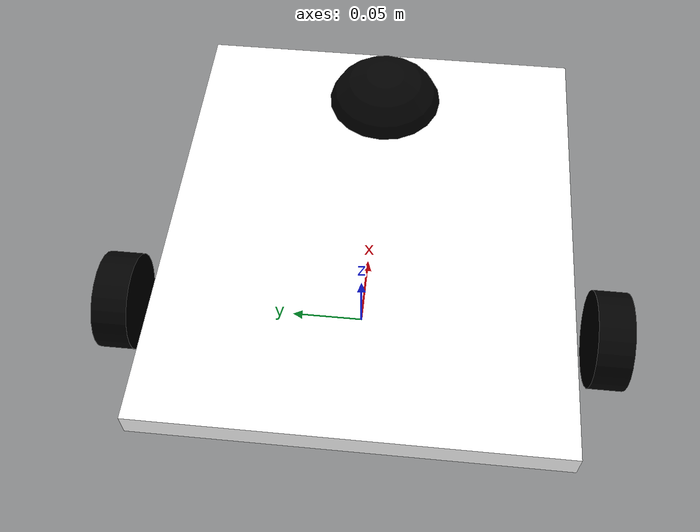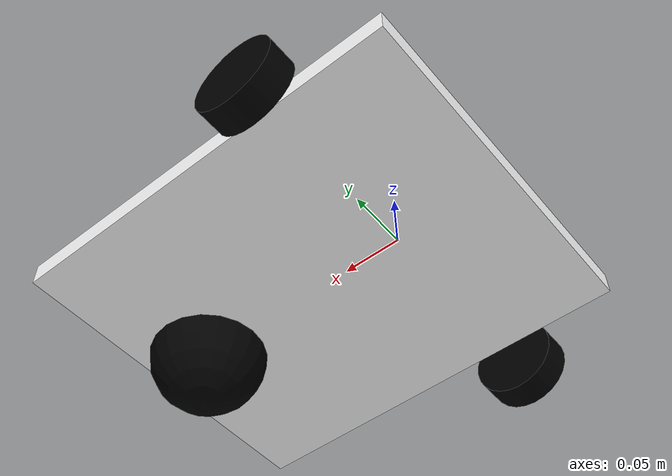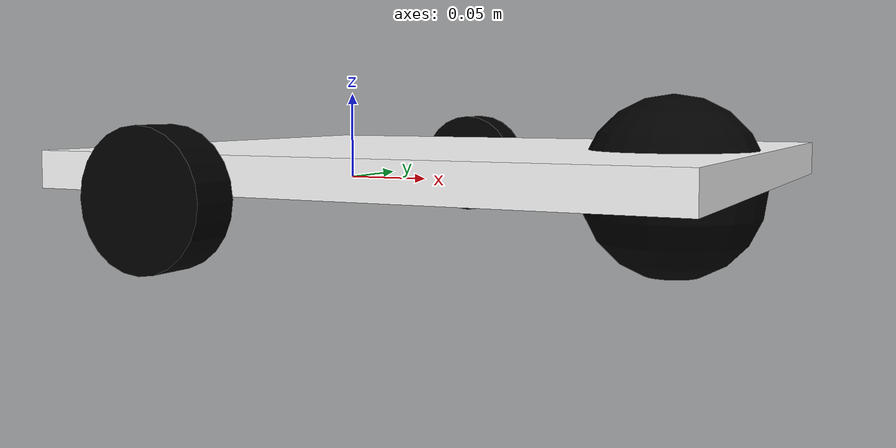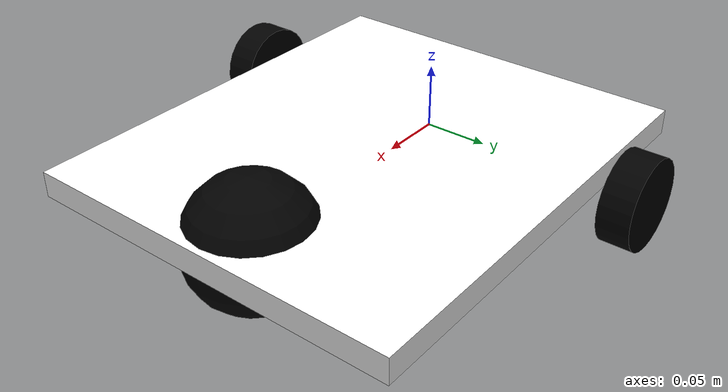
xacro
<?xml version="1.0"?>
<robot xmlns:xacro="https://www.ros.org/wiki/xacro" >

    <xacro:include filename="inertial_macros.xacro"/>

    <material name="white">
        <color rgba="1 1 1 1"/>
    </material>

    <material name="orange">
        <color rgba="1 0.3 0.1 1"/>
    </material>

    <material name="blue">
        <color rgba="0.2 0.2 1 1"/>
    </material>

    <material name="black">
        <color rgba="0 0 0 1"/>
    </material>

    <material name="red">
        <color rgba="1 0 0 1"/>
    </material>

    <!-- BASE LINK -->
    <link name="base_link">
    </link>

    <!-- BASE FOOTPRINT -->
    <link name="base_footprint">
    </link>

    <!-- Joint to connect base_link to base_footprint -->
    <joint name="base_footprint_joint" type="fixed">
        <parent link="base_link"/>
        <child link="base_footprint"/>
        <origin xyz="0 0 0" rpy="0 0 0"/>
    </joint>

    <!-- CHASSIS LINK -->
    <joint name="chassis_joint" type="fixed">
        <parent link="base_footprint"/>
        <child link="chassis"/>
        <origin xyz="-0.1 0 0"/>
    </joint>

    <link name="chassis">
        <visual>
            <origin xyz="0.175 0 0.01"/>
            <geometry>
                <box size="0.35 0.3 0.02"/>
            </geometry>
            <material name="white"/>
        </visual>
        <collision>
            <origin xyz="0.175 0 0.01"/>
            <geometry>
                <box size="0.35 0.3 0.02"/>
            </geometry>
        </collision>
        <xacro:inertial_box mass="0.5" x="0.35" y="0.3" z="0.02">
            <origin xyz="0.175 0 0.01" rpy="0 0 0"/>
        </xacro:inertial_box>
    </link>

    <!-- LEFT WHEEL LINK -->
    <joint name="left_wheel_joint" type="continuous">
        <parent link="base_footprint"/>
        <child link="left_wheel"/>
        <origin xyz="0 0.175 0" rpy="-${pi/2} 0 0"/>
        <axis xyz="0 0 1"/>
    </joint>

    <link name="left_wheel">
        <visual>
            <geometry>
                <cylinder radius="0.035" length="0.025"/>
            </geometry>
            <material name="black"/>
        </visual>
        <collision>
            <geometry>
                <cylinder radius="0.035" length="0.025"/>
            </geometry>
        </collision>
        <xacro:inertial_cylinder mass="0.1" length="0.025" radius="0.035">
            <origin xyz="0 0 0" rpy="0 0 0"/>
        </xacro:inertial_cylinder>
    </link>

    <!-- RIGHT WHEEL LINK -->
    <joint name="right_wheel_joint" type="continuous">
        <parent link="base_footprint"/>
        <child link="right_wheel"/>
        <origin xyz="0 -0.175 0" rpy="${pi/2} 0 0"/>
        <axis xyz="0 0 -1"/>
    </joint>

    <link name="right_wheel">
        <visual>
            <geometry>
                <cylinder radius="0.035" length="0.025"/>
            </geometry>
            <material name="black"/>
        </visual>
        <collision>
            <geometry>
                <cylinder radius="0.035" length="0.025"/>
            </geometry>
        </collision>
        <xacro:inertial_cylinder mass="0.1" length="0.025" radius="0.035">
            <origin xyz="0 0 0" rpy="0 0 0"/>
        </xacro:inertial_cylinder>
    </link>

    <!-- CASTOR WHEEL LINK -->
    <joint name="castor_wheel_joint" type="fixed">
        <parent link="chassis"/>
        <child link="castor_wheel"/>
        <origin xyz="0.3 0 0"/>
    </joint>

    <link name="castor_wheel">
        <visual>
            <geometry>
                <sphere radius="0.05"/>
            </geometry>
            <material name="black"/>
        </visual>
        <collision>
            <geometry>
                <sphere radius="0.035"/>
            </geometry>
        </collision>
        <xacro:inertial_sphere mass="0.1" radius="0.035">
            <origin xyz="0 0 0" rpy="0 0 0"/>
        </xacro:inertial_sphere>
    </link>
</robot>
